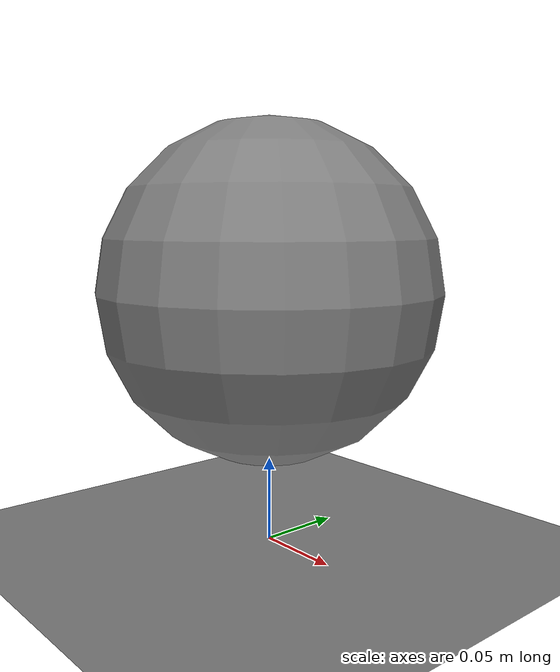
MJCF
<mujoco model="condim4_test">
            <option gravity="0 0 -9.81" timestep="0.001" solver="Newton" cone="elliptic"/>
            <worldbody>
                <body name="ball" pos="0 0 0.15">
                    <joint type="free"/>
                    <geom type="sphere" size="0.1" mass="1.0" condim="4"
                          friction="0.8 0.01 0.001"/>
                </body>
                <geom type="plane" size="5 5 0.1" condim="4"
                      friction="0.8 0.01 0.001"/>
            </worldbody>
        </mujoco>
